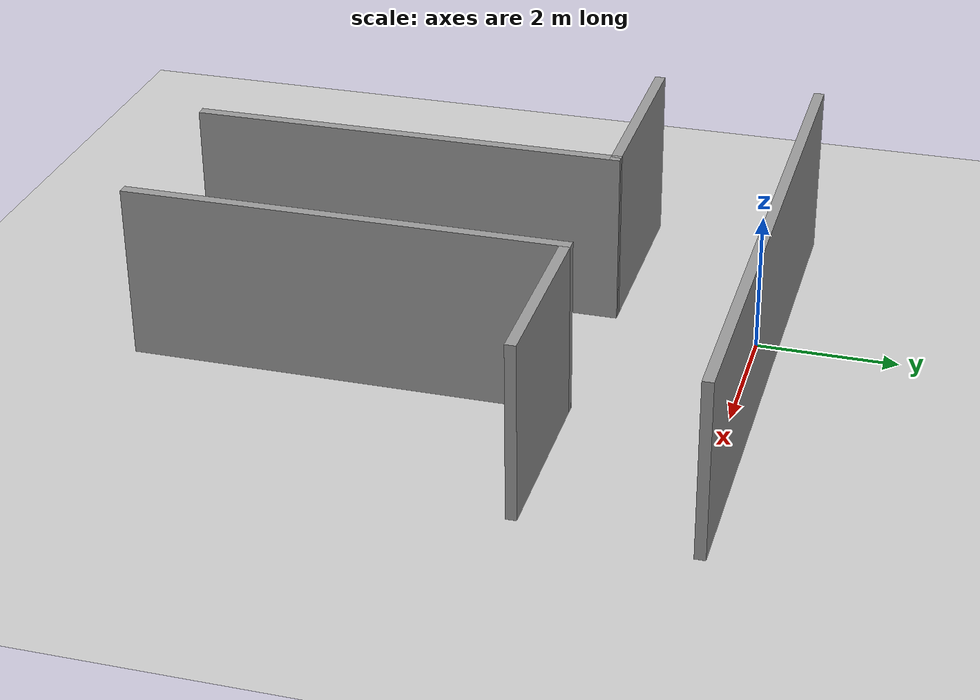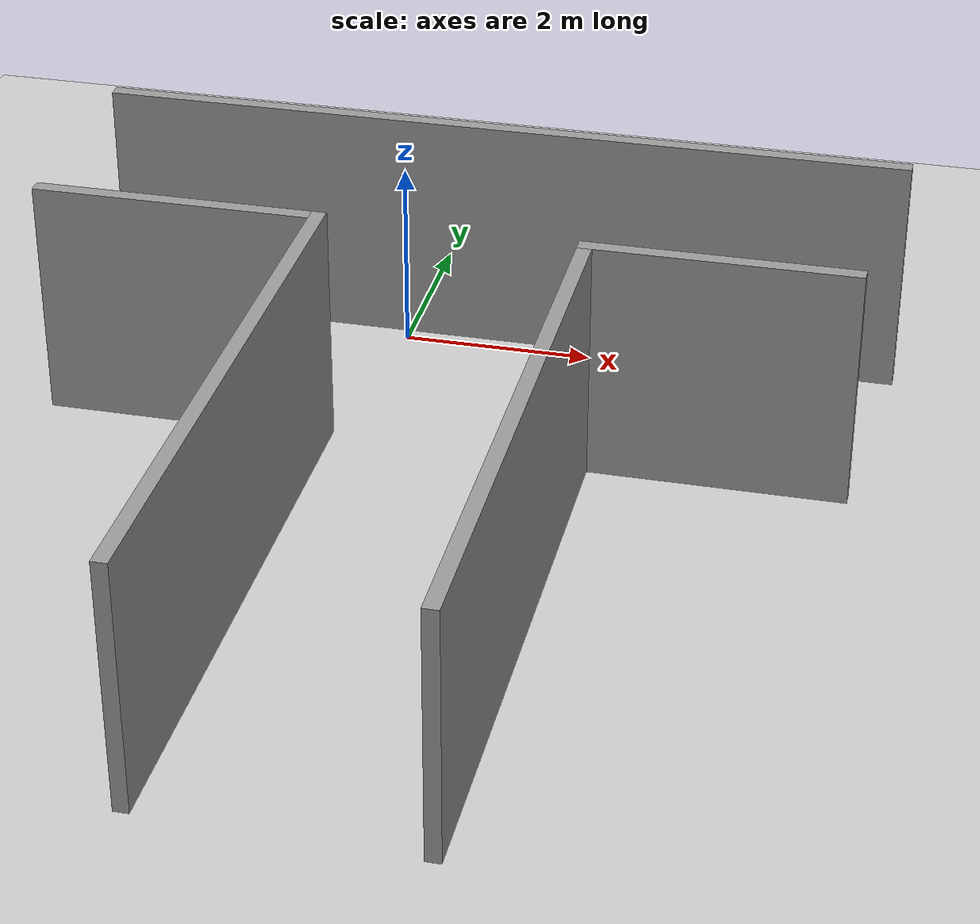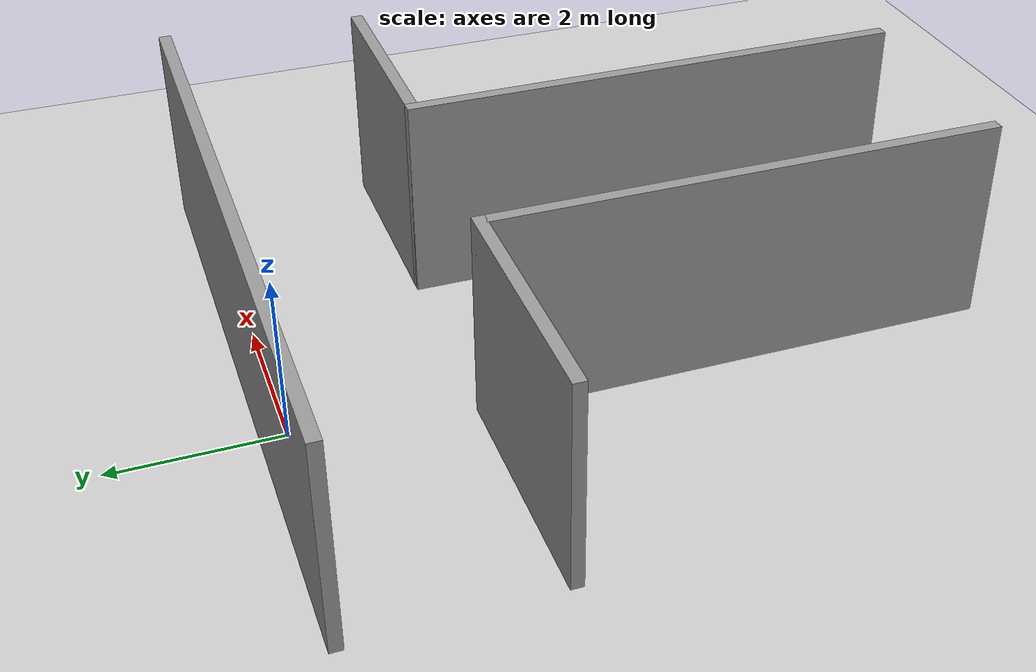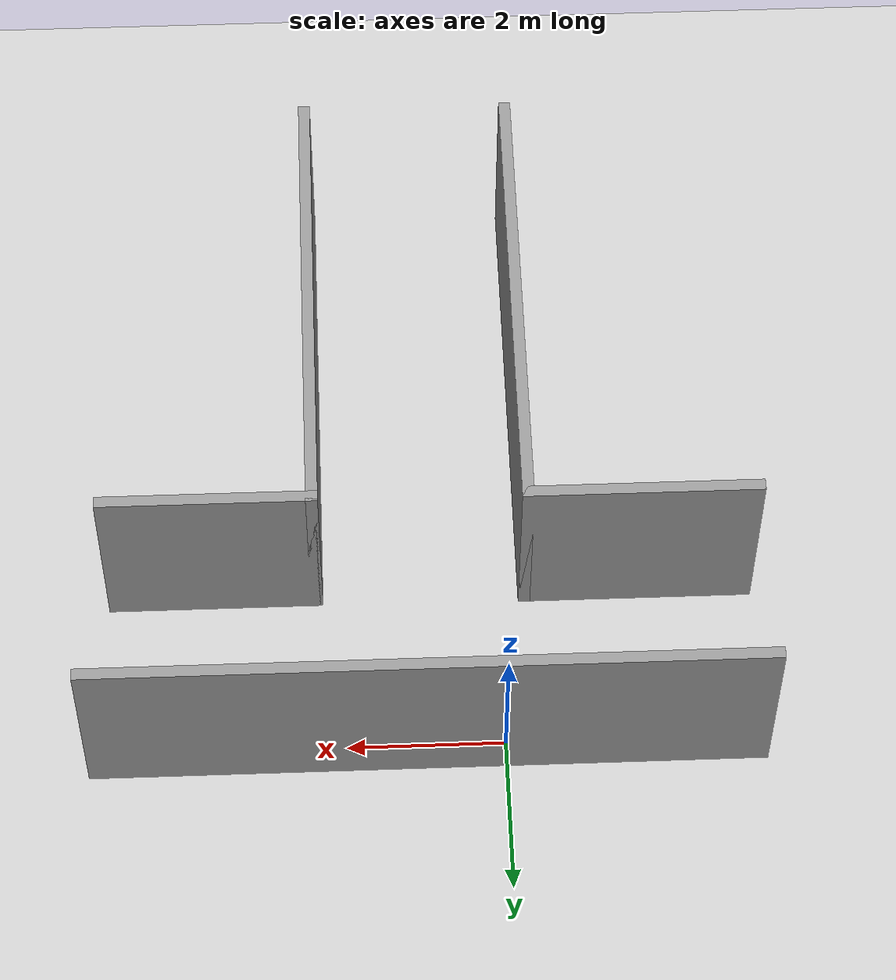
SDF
<sdf version="1.6">
 <world name="default">
  <light name="sun" type="directional">
   <pose>0 0 10 0 -0 0</pose>
   <diffuse>0.8 0.8 0.8 1</diffuse>
   <specular>0.1 0.1 0.1 1</specular>
   <attenuation>
    <range>1000</range>
    <constant>0.9</constant>
    <linear>0.01</linear>
    <quadratic>0.001</quadratic>
   </attenuation>
   <direction>-0.5 0.5 -1</direction>
  </light>
  <model name="ground_plane">
   <static>1</static>
   <link name="link">
    <collision name="collision">
     <geometry><plane><normal>0 0 1</normal><size>100 100</size></plane></geometry>
     <surface><friction><ode><mu>100</mu><mu2>50</mu2></ode></friction></surface>
    </collision>
    <visual name="visual">
     <cast_shadows>0</cast_shadows>
     <geometry><plane><normal>0 0 1</normal><size>100 100</size></plane></geometry>
     <material>
      <script><uri>file://media/materials/scripts/gazebo.material</uri><name>Gazebo/Grey</name></script>
     </material>
    </visual>
   </link>
  </model>
  <gravity>0 0 -9.8</gravity>
  <magnetic_field>6e-06 2.3e-05 -4.2e-05</magnetic_field>
  <atmosphere type="adiabatic"/>
  <physics name="default_physics" default="0" type="ode">
   <max_step_size>0.001</max_step_size>
   <real_time_factor>1</real_time_factor>
   <real_time_update_rate>1000</real_time_update_rate>
  </physics>
  <scene><ambient>0.4 0.4 0.4 1</ambient><background>0.7 0.7 0.7 1</background><shadows>1</shadows></scene>
  <spherical_coordinates>
   <surface_model>EARTH_WGS84</surface_model>
   <latitude_deg>0</latitude_deg>
   <longitude_deg>0</longitude_deg>
   <elevation>0</elevation>
   <heading_deg>0</heading_deg>
  </spherical_coordinates>
  <model name="t_shape">
   <pose>0.979095 -4.02089 0 0 -0 0</pose>
   <link name="Wall_0">
    <collision name="Wall_0_Collision">
     <geometry><box><size>3 0.15 2.5</size></box></geometry>
     <pose>0 0 1.25 0 -0 0</pose>
    </collision>
    <visual name="Wall_0_Visual">
     <pose>0 0 1.25 0 -0 0</pose>
     <geometry><box><size>3 0.15 2.5</size></box></geometry>
     <material>
      <script><uri>file://media/materials/scripts/gazebo.material</uri><name>Gazebo/Grey</name></script>
      <ambient>1 1 1 1</ambient>
     </material>
    </visual>
    <pose>-2.73409 1.87089 0 0 -0 0</pose>
   </link>
   <link name="Wall_1">
    <collision name="Wall_1_Collision">
     <geometry><box><size>6.25 0.15 2.5</size></box></geometry>
     <pose>0 0 1.25 0 -0 0</pose>
    </collision>
    <visual name="Wall_1_Visual">
     <pose>0 0 1.25 0 -0 0</pose>
     <geometry><box><size>6.25 0.15 2.5</size></box></geometry>
     <material>
      <script><uri>file://media/materials/scripts/gazebo.material</uri><name>Gazebo/Grey</name></script>
      <ambient>1 1 1 1</ambient>
     </material>
    </visual>
    <pose>-1.30909 -1.17911 0 0 0 -1.5708</pose>
   </link>
   <link name="Wall_3">
    <collision name="Wall_3_Collision">
     <geometry><box><size>6.25 0.15 2.5</size></box></geometry>
     <pose>0 0 1.25 0 -0 0</pose>
    </collision>
    <visual name="Wall_3_Visual">
     <pose>0 0 1.25 0 -0 0</pose>
     <geometry><box><size>6.25 0.15 2.5</size></box></geometry>
     <material>
      <script><uri>file://media/materials/scripts/gazebo.material</uri><name>Gazebo/Grey</name></script>
      <ambient>1 1 1 1</ambient>
     </material>
    </visual>
    <pose>1.3609 -1.20911 0 0 -0 1.5708</pose>
   </link>
   <link name="Wall_4">
    <collision name="Wall_4_Collision">
     <geometry><box><size>2.75 0.15 2.5</size></box></geometry>
     <pose>0 0 1.25 0 -0 0</pose>
    </collision>
    <visual name="Wall_4_Visual">
     <pose>0 0 1.25 0 -0 0</pose>
     <geometry><box><size>2.75 0.15 2.5</size></box></geometry>
     <material>
      <script><uri>file://media/materials/scripts/gazebo.material</uri><name>Gazebo/Grey</name></script>
      <ambient>1 1 1 1</ambient>
     </material>
    </visual>
    <pose>2.66091 1.84089 0 0 -0 0</pose>
   </link>
   <link name="Wall_6">
    <collision name="Wall_6_Collision">
     <geometry><box><size>8.5 0.15 2.5</size></box></geometry>
     <pose>0 0 1.25 0 -0 0</pose>
    </collision>
    <visual name="Wall_6_Visual">
     <pose>0 0 1.25 0 -0 0</pose>
     <geometry><box><size>8.5 0.15 2.5</size></box></geometry>
     <material>
      <script><uri>file://media/materials/scripts/gazebo.material</uri><name>Gazebo/Grey</name></script>
      <ambient>1 1 1 1</ambient>
     </material>
    </visual>
    <pose>0 4.25911 0 0 -0 0</pose>
   </link>
   <static>1</static>
  </model>
 </world>
</sdf>
